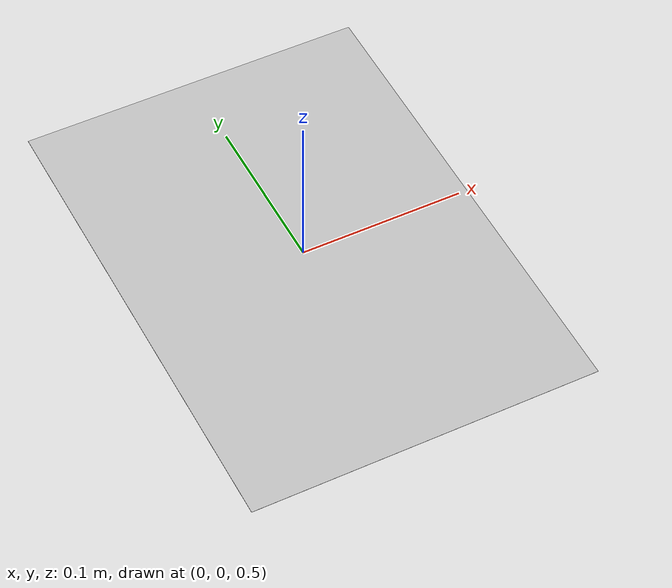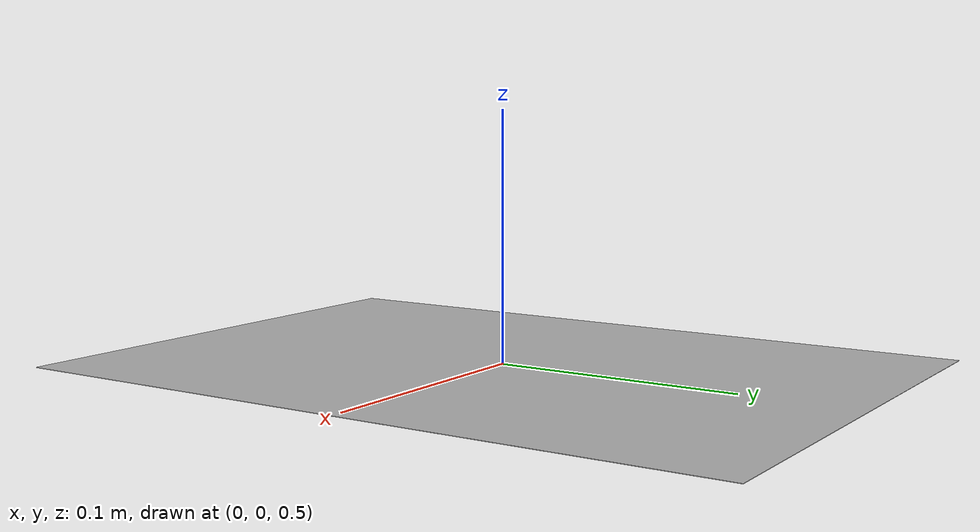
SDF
<?xml version='1.0'?>
<sdf version="1.4">
  <model name="station_label_1">
    <pose>0 0 0.5 0 0 0</pose>
    <static>true</static>
    <link name="station_label_1_1">
      <visual name="visual">
        <geometry>
          <plane>
            <normal>0 0 1</normal>
            <size>0.21 0.297</size>
          </plane>
        </geometry>
        <material>
          <script>
            <uri>model://station_label_1/materials/scripts</uri>
            <uri>model://station_label_1/materials/textures</uri>
            <name>station_label_1/image</name>
          </script>
        </material>
      </visual>
    </link>
  </model>
</sdf>
